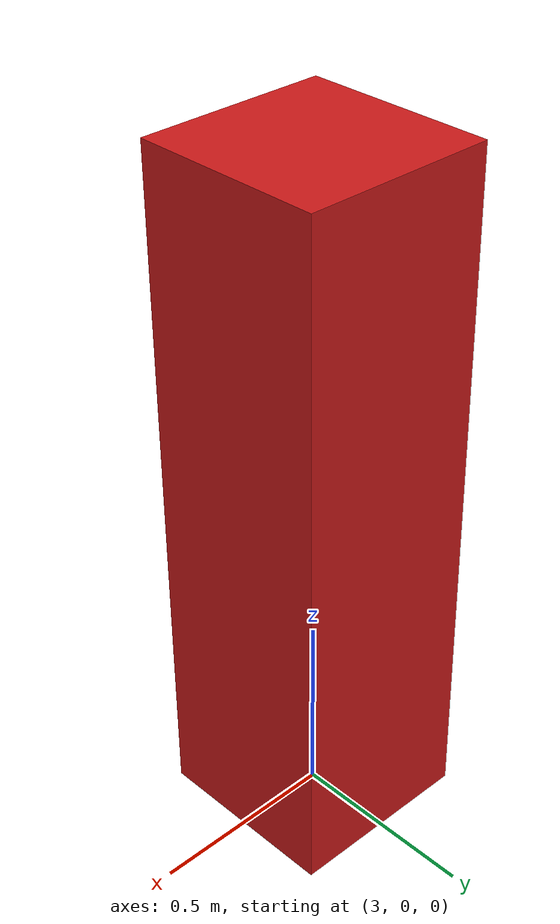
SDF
<?xml version="1.0" ?>
<sdf version="1.9">
  <model name="target_person">
    <static>true</static>
    <pose>3 0 0.9 0 0 0</pose>
    <link name="link">
      <visual name="visual">
        <geometry>
          <box><size>0.5 0.5 1.8</size></box>
        </geometry>
        <material>
          <ambient>0.8 0.1 0.1 1</ambient>
          <diffuse>0.8 0.1 0.1 1</diffuse>
        </material>
      </visual>
      <collision name="collision">
        <geometry>
          <box><size>0.5 0.5 1.8</size></box>
        </geometry>
      </collision>
    </link>
  </model>
</sdf>
